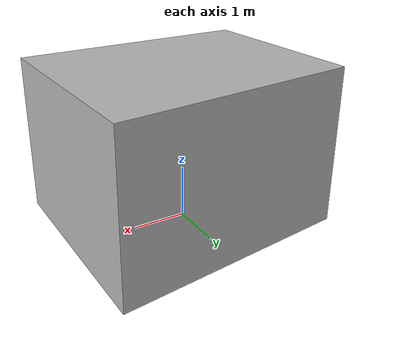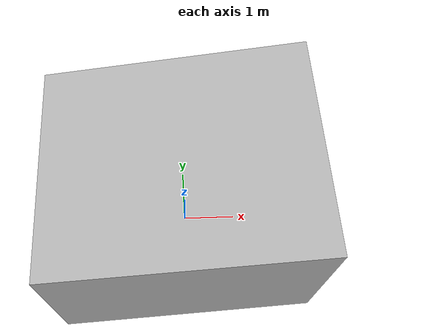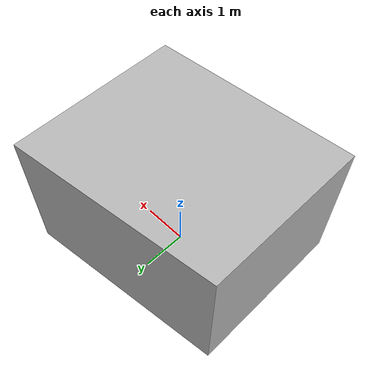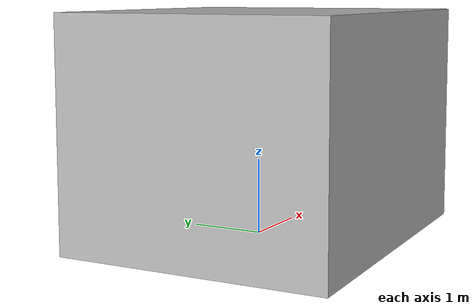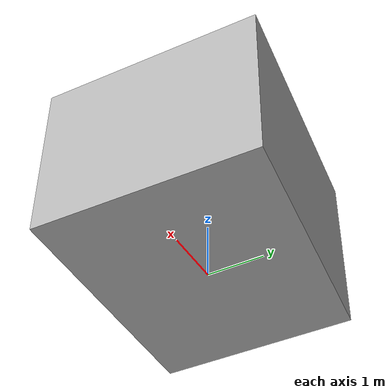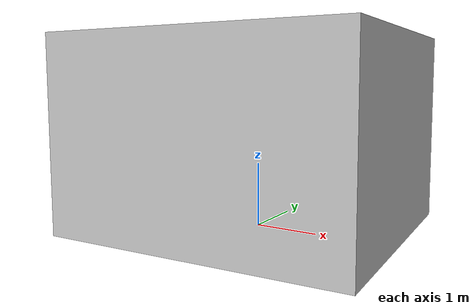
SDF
<?xml version="1.0" ?>
<sdf version="1.7">
  <model name="building_6863_actual_a_casa">
    <static>true</static>
    <link name="building_link">
      <visual name="building_visual">
        <geometry>
          <mesh>
            <uri>model://building_6863_actual_a_casa/meshes/construction_6863_actual_A_Casa_h3m.obj</uri>
          </mesh>
        </geometry>
      </visual>
    <collision name="building_collision">
      <geometry>
        <mesh>
          <uri>model://building_6863_actual_a_casa/meshes/construction_6863_actual_A_Casa_h3m.obj</uri>
        </mesh>
      </geometry>
    </collision>
    </link>
  </model>
</sdf>
